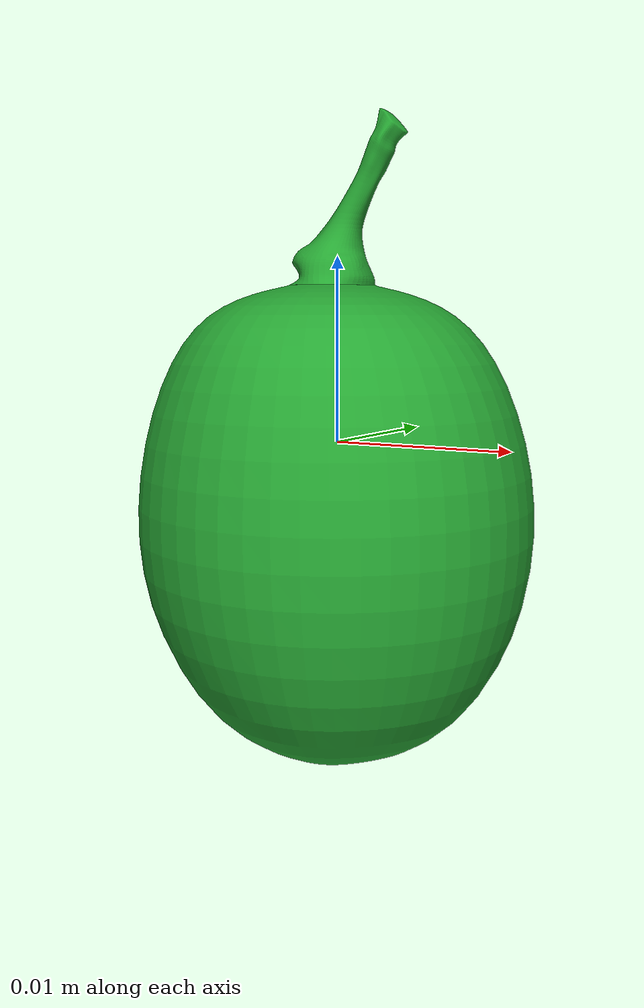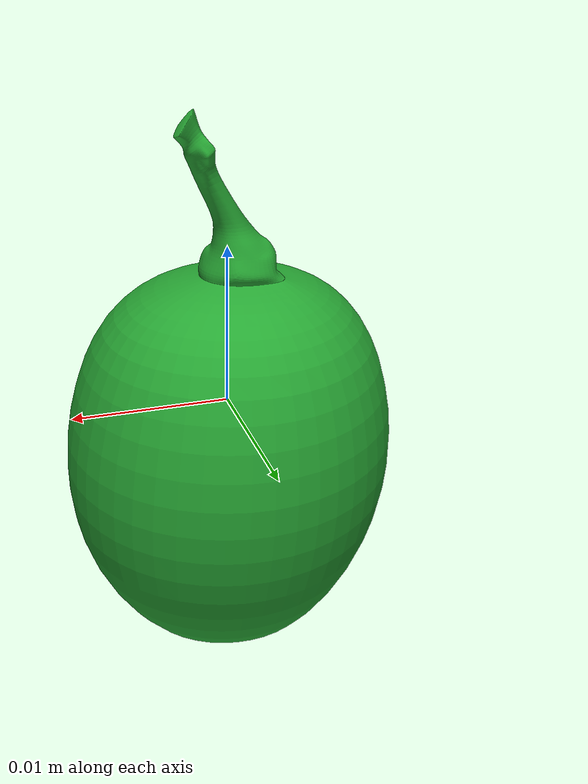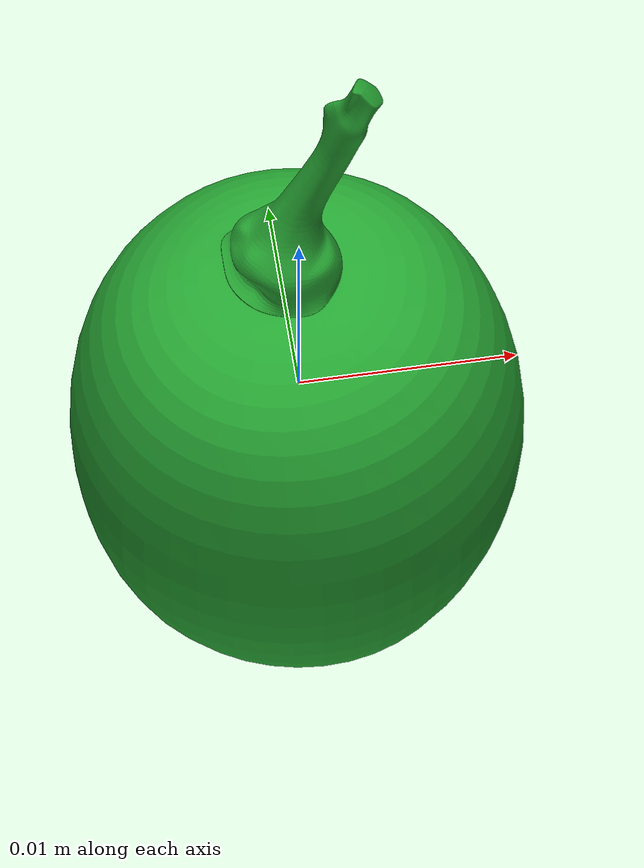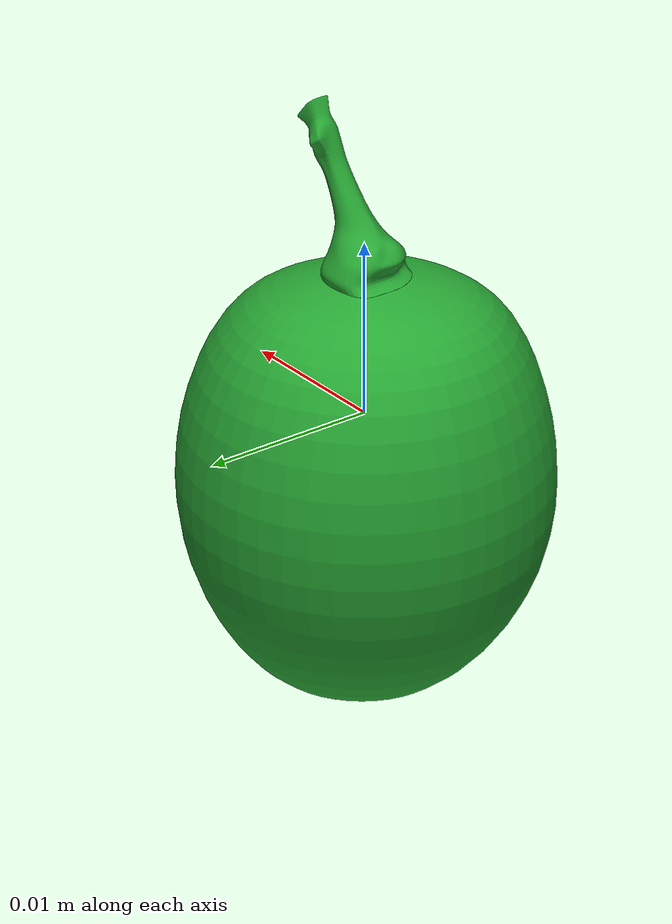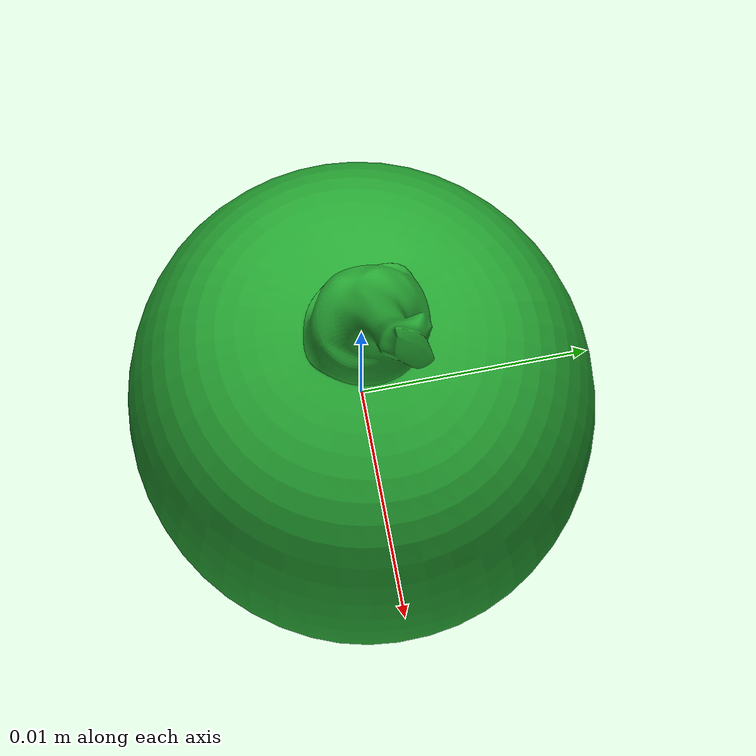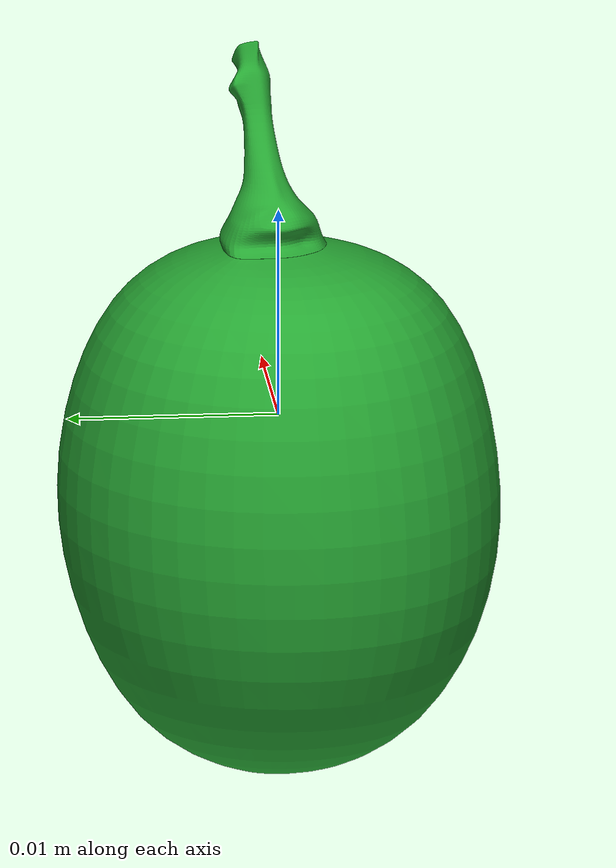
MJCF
<?xml version="1.0" ?>
<mujoco model="green_grape">
	<compiler meshdir="green_grape/meshes" texturedir="green_grape/textures" angle="radian" autolimits="true" balanceinertia="true" boundmass="0.000001" boundinertia="0.000001"/>
	<default>
		<default class="visual">
			<geom contype="0" conaffinity="0"/>
		</default>
		<default class="collision">
			<geom rgba="1.0 0.0 0.0 0.0"/>
		</default>
	</default>
	<asset>
		<mesh name="GreenGrapeFlesh" file="obj/GreenGrapeFlesh.obj" scale="1.0 1.0 1.0"/>
		<mesh name="GreenGrapeFlesh_001" file="stl/GreenGrapeFlesh_001.stl" scale="1.0 1.0 1.0"/>
		<mesh name="GreenGrapeSeed002" file="stl/GreenGrapeSeed002.stl" scale="1.0 1.0 1.0"/>
		<mesh name="GreenGrapeSeed002_002" file="stl/GreenGrapeSeed002_002.stl" scale="1.0 1.0 1.0"/>
		<mesh name="GreenGrapePeel" file="obj/GreenGrapePeel.obj" scale="1.0 1.0 1.0"/>
		<mesh name="GreenGrapePeel_001" file="stl/GreenGrapePeel_001.stl" scale="1.0 1.0 1.0"/>
		<mesh name="GreenGrapePeel_002" file="stl/GreenGrapePeel_002.stl" scale="1.0 1.0 1.0"/>
		<mesh name="GreenGrapePeel_003" file="stl/GreenGrapePeel_003.stl" scale="1.0 1.0 1.0"/>
		<mesh name="GreenGrapePeel_004" file="stl/GreenGrapePeel_004.stl" scale="1.0 1.0 1.0"/>
		<mesh name="GreenGrapePeel_005" file="stl/GreenGrapePeel_005.stl" scale="1.0 1.0 1.0"/>
		<mesh name="GreenGrapePeel_006" file="stl/GreenGrapePeel_006.stl" scale="1.0 1.0 1.0"/>
		<mesh name="GreenGrapePeel_007" file="stl/GreenGrapePeel_007.stl" scale="1.0 1.0 1.0"/>
		<mesh name="GreenGrapePeel_008" file="stl/GreenGrapePeel_008.stl" scale="1.0 1.0 1.0"/>
		<mesh name="GreenGrapePeel_009" file="stl/GreenGrapePeel_009.stl" scale="1.0 1.0 1.0"/>
		<mesh name="GreenGrapePeel_010" file="stl/GreenGrapePeel_010.stl" scale="1.0 1.0 1.0"/>
		<mesh name="GreenGrapePeel_011" file="stl/GreenGrapePeel_011.stl" scale="1.0 1.0 1.0"/>
		<mesh name="GreenGrapePeel_012" file="stl/GreenGrapePeel_012.stl" scale="1.0 1.0 1.0"/>
		<mesh name="GreenGrapePeel_013" file="stl/GreenGrapePeel_013.stl" scale="1.0 1.0 1.0"/>
		<mesh name="GreenGrapePeel_014" file="stl/GreenGrapePeel_014.stl" scale="1.0 1.0 1.0"/>
		<mesh name="GreenGrapePeel_015" file="stl/GreenGrapePeel_015.stl" scale="1.0 1.0 1.0"/>
		<mesh name="GreenGrapePeel_016" file="stl/GreenGrapePeel_016.stl" scale="1.0 1.0 1.0"/>
		<mesh name="GreenGrapePeel_017" file="stl/GreenGrapePeel_017.stl" scale="1.0 1.0 1.0"/>
		<mesh name="GreenGrapePeel_018" file="stl/GreenGrapePeel_018.stl" scale="1.0 1.0 1.0"/>
		<mesh name="GreenGrapePeel_019" file="stl/GreenGrapePeel_019.stl" scale="1.0 1.0 1.0"/>
		<mesh name="GreenGrapePeel_020" file="stl/GreenGrapePeel_020.stl" scale="1.0 1.0 1.0"/>
		<mesh name="GreenGrapePeel_021" file="stl/GreenGrapePeel_021.stl" scale="1.0 1.0 1.0"/>
		<mesh name="GreenGrapePeel_022" file="stl/GreenGrapePeel_022.stl" scale="1.0 1.0 1.0"/>
		<mesh name="GreenGrapePeel_023" file="stl/GreenGrapePeel_023.stl" scale="1.0 1.0 1.0"/>
		<mesh name="GreenGrapePeel_024" file="stl/GreenGrapePeel_024.stl" scale="1.0 1.0 1.0"/>
		<mesh name="GreenGrapePeel_025" file="stl/GreenGrapePeel_025.stl" scale="1.0 1.0 1.0"/>
		<mesh name="GreenGrapePeel_026" file="stl/GreenGrapePeel_026.stl" scale="1.0 1.0 1.0"/>
		<mesh name="GreenGrapePeel_027" file="stl/GreenGrapePeel_027.stl" scale="1.0 1.0 1.0"/>
		<mesh name="GreenGrapePeel_028" file="stl/GreenGrapePeel_028.stl" scale="1.0 1.0 1.0"/>
		<mesh name="GreenGrapePeel_029" file="stl/GreenGrapePeel_029.stl" scale="1.0 1.0 1.0"/>
		<mesh name="GreenGrapePeel_030" file="stl/GreenGrapePeel_030.stl" scale="1.0 1.0 1.0"/>
		<mesh name="GreenGrapePeel_031" file="stl/GreenGrapePeel_031.stl" scale="1.0 1.0 1.0"/>
		<mesh name="GreenGrapePeel_032" file="stl/GreenGrapePeel_032.stl" scale="1.0 1.0 1.0"/>
		<mesh name="GreenGrapePeel_033" file="stl/GreenGrapePeel_033.stl" scale="1.0 1.0 1.0"/>
		<mesh name="GreenGrapePeel_034" file="stl/GreenGrapePeel_034.stl" scale="1.0 1.0 1.0"/>
		<mesh name="GreenGrapePeel_035" file="stl/GreenGrapePeel_035.stl" scale="1.0 1.0 1.0"/>
		<mesh name="GreenGrapePeel_036" file="stl/GreenGrapePeel_036.stl" scale="1.0 1.0 1.0"/>
		<mesh name="GreenGrapePeel_037" file="stl/GreenGrapePeel_037.stl" scale="1.0 1.0 1.0"/>
		<mesh name="GreenGrapePeel_038" file="stl/GreenGrapePeel_038.stl" scale="1.0 1.0 1.0"/>
		<mesh name="GreenGrapePeel_039" file="stl/GreenGrapePeel_039.stl" scale="1.0 1.0 1.0"/>
		<mesh name="GreenGrapePeel_040" file="stl/GreenGrapePeel_040.stl" scale="1.0 1.0 1.0"/>
		<mesh name="GreenGrapePeel_041" file="stl/GreenGrapePeel_041.stl" scale="1.0 1.0 1.0"/>
		<mesh name="GreenGrapePeel_042" file="stl/GreenGrapePeel_042.stl" scale="1.0 1.0 1.0"/>
		<mesh name="GreenGrapePeel_043" file="stl/GreenGrapePeel_043.stl" scale="1.0 1.0 1.0"/>
		<mesh name="GreenGrapePeel_044" file="stl/GreenGrapePeel_044.stl" scale="1.0 1.0 1.0"/>
		<mesh name="GreenGrapePeel_045" file="stl/GreenGrapePeel_045.stl" scale="1.0 1.0 1.0"/>
		<mesh name="GreenGrapePeel_046" file="stl/GreenGrapePeel_046.stl" scale="1.0 1.0 1.0"/>
		<mesh name="GreenGrapePeel_047" file="stl/GreenGrapePeel_047.stl" scale="1.0 1.0 1.0"/>
		<mesh name="GreenGrapePeel_048" file="stl/GreenGrapePeel_048.stl" scale="1.0 1.0 1.0"/>
		<mesh name="GreenGrapePeel_049" file="stl/GreenGrapePeel_049.stl" scale="1.0 1.0 1.0"/>
		<mesh name="GreenGrapePeel_050" file="stl/GreenGrapePeel_050.stl" scale="1.0 1.0 1.0"/>
		<mesh name="GreenGrapePeel_051" file="stl/GreenGrapePeel_051.stl" scale="1.0 1.0 1.0"/>
		<mesh name="GreenGrapePeel_052" file="stl/GreenGrapePeel_052.stl" scale="1.0 1.0 1.0"/>
		<mesh name="GreenGrapePeel_053" file="stl/GreenGrapePeel_053.stl" scale="1.0 1.0 1.0"/>
		<mesh name="GreenGrapePeel_054" file="stl/GreenGrapePeel_054.stl" scale="1.0 1.0 1.0"/>
		<mesh name="GreenGrapePeel_055" file="stl/GreenGrapePeel_055.stl" scale="1.0 1.0 1.0"/>
		<mesh name="GreenGrapePeel_056" file="stl/GreenGrapePeel_056.stl" scale="1.0 1.0 1.0"/>
		<mesh name="GreenGrapePeel_057" file="stl/GreenGrapePeel_057.stl" scale="1.0 1.0 1.0"/>
		<mesh name="GreenGrapePeel_058" file="stl/GreenGrapePeel_058.stl" scale="1.0 1.0 1.0"/>
		<mesh name="GreenGrapePeel_059" file="stl/GreenGrapePeel_059.stl" scale="1.0 1.0 1.0"/>
		<mesh name="GreenGrapePeel_060" file="stl/GreenGrapePeel_060.stl" scale="1.0 1.0 1.0"/>
		<mesh name="GreenGrapePeel_061" file="stl/GreenGrapePeel_061.stl" scale="1.0 1.0 1.0"/>
		<mesh name="GreenGrapePeel_062" file="stl/GreenGrapePeel_062.stl" scale="1.0 1.0 1.0"/>
		<mesh name="GreenGrapePeel_063" file="stl/GreenGrapePeel_063.stl" scale="1.0 1.0 1.0"/>
		<mesh name="GreenGrapePeel_064" file="stl/GreenGrapePeel_064.stl" scale="1.0 1.0 1.0"/>
		<mesh name="GreenGrapePeel_065" file="stl/GreenGrapePeel_065.stl" scale="1.0 1.0 1.0"/>
		<mesh name="GreenGrapePeel_066" file="stl/GreenGrapePeel_066.stl" scale="1.0 1.0 1.0"/>
		<mesh name="GreenGrapePeel_067" file="stl/GreenGrapePeel_067.stl" scale="1.0 1.0 1.0"/>
		<mesh name="GreenGrapePeel_068" file="stl/GreenGrapePeel_068.stl" scale="1.0 1.0 1.0"/>
		<mesh name="GreenGrapePeel_069" file="stl/GreenGrapePeel_069.stl" scale="1.0 1.0 1.0"/>
		<mesh name="GreenGrapePeel_070" file="stl/GreenGrapePeel_070.stl" scale="1.0 1.0 1.0"/>
		<mesh name="GreenGrapePeel_071" file="stl/GreenGrapePeel_071.stl" scale="1.0 1.0 1.0"/>
		<mesh name="GreenGrapePeel_072" file="stl/GreenGrapePeel_072.stl" scale="1.0 1.0 1.0"/>
		<mesh name="GreenGrapePeel_073" file="stl/GreenGrapePeel_073.stl" scale="1.0 1.0 1.0"/>
		<mesh name="GreenGrapePeel_074" file="stl/GreenGrapePeel_074.stl" scale="1.0 1.0 1.0"/>
		<mesh name="GreenGrapePeel_075" file="stl/GreenGrapePeel_075.stl" scale="1.0 1.0 1.0"/>
		<mesh name="GreenGrapePeel_076" file="stl/GreenGrapePeel_076.stl" scale="1.0 1.0 1.0"/>
		<mesh name="GreenGrapePeel_077" file="stl/GreenGrapePeel_077.stl" scale="1.0 1.0 1.0"/>
		<mesh name="GreenGrapePeel_078" file="stl/GreenGrapePeel_078.stl" scale="1.0 1.0 1.0"/>
		<mesh name="GreenGrapePeel_079" file="stl/GreenGrapePeel_079.stl" scale="1.0 1.0 1.0"/>
		<mesh name="GreenGrapePeel_080" file="stl/GreenGrapePeel_080.stl" scale="1.0 1.0 1.0"/>
		<mesh name="GreenGrapePeel_081" file="stl/GreenGrapePeel_081.stl" scale="1.0 1.0 1.0"/>
		<mesh name="GreenGrapePeel_082" file="stl/GreenGrapePeel_082.stl" scale="1.0 1.0 1.0"/>
		<mesh name="GreenGrapePeel_083" file="stl/GreenGrapePeel_083.stl" scale="1.0 1.0 1.0"/>
		<mesh name="GreenGrapePeel_084" file="stl/GreenGrapePeel_084.stl" scale="1.0 1.0 1.0"/>
		<mesh name="GreenGrapePeel_085" file="stl/GreenGrapePeel_085.stl" scale="1.0 1.0 1.0"/>
		<mesh name="GreenGrapePeel_086" file="stl/GreenGrapePeel_086.stl" scale="1.0 1.0 1.0"/>
		<mesh name="GreenGrapePeel_087" file="stl/GreenGrapePeel_087.stl" scale="1.0 1.0 1.0"/>
		<mesh name="GreenGrapePeel_088" file="stl/GreenGrapePeel_088.stl" scale="1.0 1.0 1.0"/>
		<mesh name="GreenGrapePeel_089" file="stl/GreenGrapePeel_089.stl" scale="1.0 1.0 1.0"/>
		<mesh name="GreenGrapePeel_090" file="stl/GreenGrapePeel_090.stl" scale="1.0 1.0 1.0"/>
		<mesh name="GreenGrapePeel_091" file="stl/GreenGrapePeel_091.stl" scale="1.0 1.0 1.0"/>
		<mesh name="GreenGrapePeel_092" file="stl/GreenGrapePeel_092.stl" scale="1.0 1.0 1.0"/>
		<mesh name="GreenGrapeStalk" file="obj/GreenGrapeStalk.obj" scale="1.0 1.0 1.0"/>
		<mesh name="GreenGrapeStalk_001" file="stl/GreenGrapeStalk_001.stl" scale="1.0 1.0 1.0"/>
		<mesh name="GreenGrapeStalk_002" file="stl/GreenGrapeStalk_002.stl" scale="1.0 1.0 1.0"/>
		<mesh name="GreenGrapeStalk_003" file="stl/GreenGrapeStalk_003.stl" scale="1.0 1.0 1.0"/>
		<mesh name="GreenGrapeStalk_004" file="stl/GreenGrapeStalk_004.stl" scale="1.0 1.0 1.0"/>
		<mesh name="GreenGrapeStalk_005" file="stl/GreenGrapeStalk_005.stl" scale="1.0 1.0 1.0"/>
		<mesh name="GreenGrapeStalk_006" file="stl/GreenGrapeStalk_006.stl" scale="1.0 1.0 1.0"/>
		<mesh name="GreenGrapeStalk_007" file="stl/GreenGrapeStalk_007.stl" scale="1.0 1.0 1.0"/>
		<material name="M_GreenGrapeFlesh" texture="T_GreenGrapeFlesh"/>
		<material name="M_GreenGrapeSeed002" rgba="0.6880000233650208 0.715499997138977 0.545799970626831 1.0" emission="0.0"/>
		<material name="M_GreenGrapePeel" texture="T_GreenGrapePeel"/>
		<material name="M_GreenGrapeStalk" texture="T_GreenGrapeStalk"/>
		<texture name="T_GreenGrapeFlesh" type="2d" file="T_GreenGrapeFlesh.png"/>
		<texture name="T_GreenGrapePeel" type="2d" file="T_GreenGrapePeel.png"/>
		<texture name="T_GreenGrapeStalk" type="2d" file="T_GreenGrapeStalk.png"/>
	</asset>
	<worldbody>
		<body name="green_grape" pos="0.0 0.0 0.0" quat="1.0 0.0 0.0 0.0">
			<body name="green_grape_flesh" pos="0.0 0.0 0.0" quat="1.0 0.0 0.0 0.0">
				<inertial mass="0.006244463846087456" pos="-3.401461799512617e-05 -3.288120205979794e-05 -0.004133031703531742" quat="-0.6291624307632446 0.2989480793476105 0.6534037590026855 0.2963919937610626" diaginertia="2.77418791938544e-07 4.677823710608209e-07 4.750807818254543e-07"/>
				<geom name="GreenGrapeFlesh" type="mesh" pos="0.0 0.0 0.0" quat="1.0 0.0 0.0 0.0" mesh="GreenGrapeFlesh" material="M_GreenGrapeFlesh" class="visual"/>
				<geom name="GreenGrapeFlesh_001" type="mesh" pos="0.0 0.0 0.0" quat="1.0 0.0 0.0 0.0" mesh="GreenGrapeFlesh_001" class="collision"/>
			</body>
			<body name="green_grape_peel" pos="0.0 0.0 0.0" quat="1.0 0.0 0.0 0.0">
				<inertial mass="0.00016574017354287207" pos="-2.9452494345605373e-05 -3.811405258602463e-05 -0.0042781769298017025" quat="-0.628704309463501 0.2959022521972656 0.6562054753303528 0.294222891330719" diaginertia="1.2907409363549505e-08 1.8610123220241803e-08 1.8875356389003173e-08"/>
				<geom name="GreenGrapePeel" type="mesh" pos="0.0 0.0 0.0" quat="1.0 0.0 0.0 0.0" mesh="GreenGrapePeel" material="M_GreenGrapePeel" class="visual"/>
				<geom name="GreenGrapePeel_001" type="mesh" pos="0.0 0.0 0.0" quat="1.0 0.0 0.0 0.0" mesh="GreenGrapePeel_001" class="collision"/>
				<geom name="GreenGrapePeel_002" type="mesh" pos="0.0 0.0 0.0" quat="1.0 0.0 0.0 0.0" mesh="GreenGrapePeel_002" class="collision"/>
				<geom name="GreenGrapePeel_003" type="mesh" pos="0.0 0.0 0.0" quat="1.0 0.0 0.0 0.0" mesh="GreenGrapePeel_003" class="collision"/>
				<geom name="GreenGrapePeel_004" type="mesh" pos="0.0 0.0 0.0" quat="1.0 0.0 0.0 0.0" mesh="GreenGrapePeel_004" class="collision"/>
				<geom name="GreenGrapePeel_005" type="mesh" pos="0.0 0.0 0.0" quat="1.0 0.0 0.0 0.0" mesh="GreenGrapePeel_005" class="collision"/>
				<geom name="GreenGrapePeel_006" type="mesh" pos="0.0 0.0 0.0" quat="1.0 0.0 0.0 0.0" mesh="GreenGrapePeel_006" class="collision"/>
				<geom name="GreenGrapePeel_007" type="mesh" pos="0.0 0.0 0.0" quat="1.0 0.0 0.0 0.0" mesh="GreenGrapePeel_007" class="collision"/>
				<geom name="GreenGrapePeel_008" type="mesh" pos="0.0 0.0 0.0" quat="1.0 0.0 0.0 0.0" mesh="GreenGrapePeel_008" class="collision"/>
				<geom name="GreenGrapePeel_009" type="mesh" pos="0.0 0.0 0.0" quat="1.0 0.0 0.0 0.0" mesh="GreenGrapePeel_009" class="collision"/>
				<geom name="GreenGrapePeel_010" type="mesh" pos="0.0 0.0 0.0" quat="1.0 0.0 0.0 0.0" mesh="GreenGrapePeel_010" class="collision"/>
				<geom name="GreenGrapePeel_011" type="mesh" pos="0.0 0.0 0.0" quat="1.0 0.0 0.0 0.0" mesh="GreenGrapePeel_011" class="collision"/>
				<geom name="GreenGrapePeel_012" type="mesh" pos="0.0 0.0 0.0" quat="1.0 0.0 0.0 0.0" mesh="GreenGrapePeel_012" class="collision"/>
				<geom name="GreenGrapePeel_013" type="mesh" pos="0.0 0.0 0.0" quat="1.0 0.0 0.0 0.0" mesh="GreenGrapePeel_013" class="collision"/>
				<geom name="GreenGrapePeel_014" type="mesh" pos="0.0 0.0 0.0" quat="1.0 0.0 0.0 0.0" mesh="GreenGrapePeel_014" class="collision"/>
				<geom name="GreenGrapePeel_015" type="mesh" pos="0.0 0.0 0.0" quat="1.0 0.0 0.0 0.0" mesh="GreenGrapePeel_015" class="collision"/>
				<geom name="GreenGrapePeel_016" type="mesh" pos="0.0 0.0 0.0" quat="1.0 0.0 0.0 0.0" mesh="GreenGrapePeel_016" class="collision"/>
				<geom name="GreenGrapePeel_017" type="mesh" pos="0.0 0.0 0.0" quat="1.0 0.0 0.0 0.0" mesh="GreenGrapePeel_017" class="collision"/>
				<geom name="GreenGrapePeel_018" type="mesh" pos="0.0 0.0 0.0" quat="1.0 0.0 0.0 0.0" mesh="GreenGrapePeel_018" class="collision"/>
				<geom name="GreenGrapePeel_019" type="mesh" pos="0.0 0.0 0.0" quat="1.0 0.0 0.0 0.0" mesh="GreenGrapePeel_019" class="collision"/>
				<geom name="GreenGrapePeel_020" type="mesh" pos="0.0 0.0 0.0" quat="1.0 0.0 0.0 0.0" mesh="GreenGrapePeel_020" class="collision"/>
				<geom name="GreenGrapePeel_021" type="mesh" pos="0.0 0.0 0.0" quat="1.0 0.0 0.0 0.0" mesh="GreenGrapePeel_021" class="collision"/>
				<geom name="GreenGrapePeel_022" type="mesh" pos="0.0 0.0 0.0" quat="1.0 0.0 0.0 0.0" mesh="GreenGrapePeel_022" class="collision"/>
				<geom name="GreenGrapePeel_023" type="mesh" pos="0.0 0.0 0.0" quat="1.0 0.0 0.0 0.0" mesh="GreenGrapePeel_023" class="collision"/>
				<geom name="GreenGrapePeel_024" type="mesh" pos="0.0 0.0 0.0" quat="1.0 0.0 0.0 0.0" mesh="GreenGrapePeel_024" class="collision"/>
				<geom name="GreenGrapePeel_025" type="mesh" pos="0.0 0.0 0.0" quat="1.0 0.0 0.0 0.0" mesh="GreenGrapePeel_025" class="collision"/>
				<geom name="GreenGrapePeel_026" type="mesh" pos="0.0 0.0 0.0" quat="1.0 0.0 0.0 0.0" mesh="GreenGrapePeel_026" class="collision"/>
				<geom name="GreenGrapePeel_027" type="mesh" pos="0.0 0.0 0.0" quat="1.0 0.0 0.0 0.0" mesh="GreenGrapePeel_027" class="collision"/>
				<geom name="GreenGrapePeel_028" type="mesh" pos="0.0 0.0 0.0" quat="1.0 0.0 0.0 0.0" mesh="GreenGrapePeel_028" class="collision"/>
				<geom name="GreenGrapePeel_029" type="mesh" pos="0.0 0.0 0.0" quat="1.0 0.0 0.0 0.0" mesh="GreenGrapePeel_029" class="collision"/>
				<geom name="GreenGrapePeel_030" type="mesh" pos="0.0 0.0 0.0" quat="1.0 0.0 0.0 0.0" mesh="GreenGrapePeel_030" class="collision"/>
				<geom name="GreenGrapePeel_031" type="mesh" pos="0.0 0.0 0.0" quat="1.0 0.0 0.0 0.0" mesh="GreenGrapePeel_031" class="collision"/>
				<geom name="GreenGrapePeel_032" type="mesh" pos="0.0 0.0 0.0" quat="1.0 0.0 0.0 0.0" mesh="GreenGrapePeel_032" class="collision"/>
				<geom name="GreenGrapePeel_033" type="mesh" pos="0.0 0.0 0.0" quat="1.0 0.0 0.0 0.0" mesh="GreenGrapePeel_033" class="collision"/>
				<geom name="GreenGrapePeel_034" type="mesh" pos="0.0 0.0 0.0" quat="1.0 0.0 0.0 0.0" mesh="GreenGrapePeel_034" class="collision"/>
				<geom name="GreenGrapePeel_035" type="mesh" pos="0.0 0.0 0.0" quat="1.0 0.0 0.0 0.0" mesh="GreenGrapePeel_035" class="collision"/>
				<geom name="GreenGrapePeel_036" type="mesh" pos="0.0 0.0 0.0" quat="1.0 0.0 0.0 0.0" mesh="GreenGrapePeel_036" class="collision"/>
				<geom name="GreenGrapePeel_037" type="mesh" pos="0.0 0.0 0.0" quat="1.0 0.0 0.0 0.0" mesh="GreenGrapePeel_037" class="collision"/>
				<geom name="GreenGrapePeel_038" type="mesh" pos="0.0 0.0 0.0" quat="1.0 0.0 0.0 0.0" mesh="GreenGrapePeel_038" class="collision"/>
				<geom name="GreenGrapePeel_039" type="mesh" pos="0.0 0.0 0.0" quat="1.0 0.0 0.0 0.0" mesh="GreenGrapePeel_039" class="collision"/>
				<geom name="GreenGrapePeel_040" type="mesh" pos="0.0 0.0 0.0" quat="1.0 0.0 0.0 0.0" mesh="GreenGrapePeel_040" class="collision"/>
				<geom name="GreenGrapePeel_041" type="mesh" pos="0.0 0.0 0.0" quat="1.0 0.0 0.0 0.0" mesh="GreenGrapePeel_041" class="collision"/>
				<geom name="GreenGrapePeel_042" type="mesh" pos="0.0 0.0 0.0" quat="1.0 0.0 0.0 0.0" mesh="GreenGrapePeel_042" class="collision"/>
				<geom name="GreenGrapePeel_043" type="mesh" pos="0.0 0.0 0.0" quat="1.0 0.0 0.0 0.0" mesh="GreenGrapePeel_043" class="collision"/>
				<geom name="GreenGrapePeel_044" type="mesh" pos="0.0 0.0 0.0" quat="1.0 0.0 0.0 0.0" mesh="GreenGrapePeel_044" class="collision"/>
				<geom name="GreenGrapePeel_045" type="mesh" pos="0.0 0.0 0.0" quat="1.0 0.0 0.0 0.0" mesh="GreenGrapePeel_045" class="collision"/>
				<geom name="GreenGrapePeel_046" type="mesh" pos="0.0 0.0 0.0" quat="1.0 0.0 0.0 0.0" mesh="GreenGrapePeel_046" class="collision"/>
				<geom name="GreenGrapePeel_047" type="mesh" pos="0.0 0.0 0.0" quat="1.0 0.0 0.0 0.0" mesh="GreenGrapePeel_047" class="collision"/>
				<geom name="GreenGrapePeel_048" type="mesh" pos="0.0 0.0 0.0" quat="1.0 0.0 0.0 0.0" mesh="GreenGrapePeel_048" class="collision"/>
				<geom name="GreenGrapePeel_049" type="mesh" pos="0.0 0.0 0.0" quat="1.0 0.0 0.0 0.0" mesh="GreenGrapePeel_049" class="collision"/>
				<geom name="GreenGrapePeel_050" type="mesh" pos="0.0 0.0 0.0" quat="1.0 0.0 0.0 0.0" mesh="GreenGrapePeel_050" class="collision"/>
				<geom name="GreenGrapePeel_051" type="mesh" pos="0.0 0.0 0.0" quat="1.0 0.0 0.0 0.0" mesh="GreenGrapePeel_051" class="collision"/>
				<geom name="GreenGrapePeel_052" type="mesh" pos="0.0 0.0 0.0" quat="1.0 0.0 0.0 0.0" mesh="GreenGrapePeel_052" class="collision"/>
				<geom name="GreenGrapePeel_053" type="mesh" pos="0.0 0.0 0.0" quat="1.0 0.0 0.0 0.0" mesh="GreenGrapePeel_053" class="collision"/>
				<geom name="GreenGrapePeel_054" type="mesh" pos="0.0 0.0 0.0" quat="1.0 0.0 0.0 0.0" mesh="GreenGrapePeel_054" class="collision"/>
				<geom name="GreenGrapePeel_055" type="mesh" pos="0.0 0.0 0.0" quat="1.0 0.0 0.0 0.0" mesh="GreenGrapePeel_055" class="collision"/>
				<geom name="GreenGrapePeel_056" type="mesh" pos="0.0 0.0 0.0" quat="1.0 0.0 0.0 0.0" mesh="GreenGrapePeel_056" class="collision"/>
				<geom name="GreenGrapePeel_057" type="mesh" pos="0.0 0.0 0.0" quat="1.0 0.0 0.0 0.0" mesh="GreenGrapePeel_057" class="collision"/>
				<geom name="GreenGrapePeel_058" type="mesh" pos="0.0 0.0 0.0" quat="1.0 0.0 0.0 0.0" mesh="GreenGrapePeel_058" class="collision"/>
				<geom name="GreenGrapePeel_059" type="mesh" pos="0.0 0.0 0.0" quat="1.0 0.0 0.0 0.0" mesh="GreenGrapePeel_059" class="collision"/>
				<geom name="GreenGrapePeel_060" type="mesh" pos="0.0 0.0 0.0" quat="1.0 0.0 0.0 0.0" mesh="GreenGrapePeel_060" class="collision"/>
				<geom name="GreenGrapePeel_061" type="mesh" pos="0.0 0.0 0.0" quat="1.0 0.0 0.0 0.0" mesh="GreenGrapePeel_061" class="collision"/>
				<geom name="GreenGrapePeel_062" type="mesh" pos="0.0 0.0 0.0" quat="1.0 0.0 0.0 0.0" mesh="GreenGrapePeel_062" class="collision"/>
				<geom name="GreenGrapePeel_063" type="mesh" pos="0.0 0.0 0.0" quat="1.0 0.0 0.0 0.0" mesh="GreenGrapePeel_063" class="collision"/>
				<geom name="GreenGrapePeel_064" type="mesh" pos="0.0 0.0 0.0" quat="1.0 0.0 0.0 0.0" mesh="GreenGrapePeel_064" class="collision"/>
				<geom name="GreenGrapePeel_065" type="mesh" pos="0.0 0.0 0.0" quat="1.0 0.0 0.0 0.0" mesh="GreenGrapePeel_065" class="collision"/>
				<geom name="GreenGrapePeel_066" type="mesh" pos="0.0 0.0 0.0" quat="1.0 0.0 0.0 0.0" mesh="GreenGrapePeel_066" class="collision"/>
				<geom name="GreenGrapePeel_067" type="mesh" pos="0.0 0.0 0.0" quat="1.0 0.0 0.0 0.0" mesh="GreenGrapePeel_067" class="collision"/>
				<geom name="GreenGrapePeel_068" type="mesh" pos="0.0 0.0 0.0" quat="1.0 0.0 0.0 0.0" mesh="GreenGrapePeel_068" class="collision"/>
				<geom name="GreenGrapePeel_069" type="mesh" pos="0.0 0.0 0.0" quat="1.0 0.0 0.0 0.0" mesh="GreenGrapePeel_069" class="collision"/>
				<geom name="GreenGrapePeel_070" type="mesh" pos="0.0 0.0 0.0" quat="1.0 0.0 0.0 0.0" mesh="GreenGrapePeel_070" class="collision"/>
				<geom name="GreenGrapePeel_071" type="mesh" pos="0.0 0.0 0.0" quat="1.0 0.0 0.0 0.0" mesh="GreenGrapePeel_071" class="collision"/>
				<geom name="GreenGrapePeel_072" type="mesh" pos="0.0 0.0 0.0" quat="1.0 0.0 0.0 0.0" mesh="GreenGrapePeel_072" class="collision"/>
				<geom name="GreenGrapePeel_073" type="mesh" pos="0.0 0.0 0.0" quat="1.0 0.0 0.0 0.0" mesh="GreenGrapePeel_073" class="collision"/>
				<geom name="GreenGrapePeel_074" type="mesh" pos="0.0 0.0 0.0" quat="1.0 0.0 0.0 0.0" mesh="GreenGrapePeel_074" class="collision"/>
				<geom name="GreenGrapePeel_075" type="mesh" pos="0.0 0.0 0.0" quat="1.0 0.0 0.0 0.0" mesh="GreenGrapePeel_075" class="collision"/>
				<geom name="GreenGrapePeel_076" type="mesh" pos="0.0 0.0 0.0" quat="1.0 0.0 0.0 0.0" mesh="GreenGrapePeel_076" class="collision"/>
				<geom name="GreenGrapePeel_077" type="mesh" pos="0.0 0.0 0.0" quat="1.0 0.0 0.0 0.0" mesh="GreenGrapePeel_077" class="collision"/>
				<geom name="GreenGrapePeel_078" type="mesh" pos="0.0 0.0 0.0" quat="1.0 0.0 0.0 0.0" mesh="GreenGrapePeel_078" class="collision"/>
				<geom name="GreenGrapePeel_079" type="mesh" pos="0.0 0.0 0.0" quat="1.0 0.0 0.0 0.0" mesh="GreenGrapePeel_079" class="collision"/>
				<geom name="GreenGrapePeel_080" type="mesh" pos="0.0 0.0 0.0" quat="1.0 0.0 0.0 0.0" mesh="GreenGrapePeel_080" class="collision"/>
				<geom name="GreenGrapePeel_081" type="mesh" pos="0.0 0.0 0.0" quat="1.0 0.0 0.0 0.0" mesh="GreenGrapePeel_081" class="collision"/>
				<geom name="GreenGrapePeel_082" type="mesh" pos="0.0 0.0 0.0" quat="1.0 0.0 0.0 0.0" mesh="GreenGrapePeel_082" class="collision"/>
				<geom name="GreenGrapePeel_083" type="mesh" pos="0.0 0.0 0.0" quat="1.0 0.0 0.0 0.0" mesh="GreenGrapePeel_083" class="collision"/>
				<geom name="GreenGrapePeel_084" type="mesh" pos="0.0 0.0 0.0" quat="1.0 0.0 0.0 0.0" mesh="GreenGrapePeel_084" class="collision"/>
				<geom name="GreenGrapePeel_085" type="mesh" pos="0.0 0.0 0.0" quat="1.0 0.0 0.0 0.0" mesh="GreenGrapePeel_085" class="collision"/>
				<geom name="GreenGrapePeel_086" type="mesh" pos="0.0 0.0 0.0" quat="1.0 0.0 0.0 0.0" mesh="GreenGrapePeel_086" class="collision"/>
				<geom name="GreenGrapePeel_087" type="mesh" pos="0.0 0.0 0.0" quat="1.0 0.0 0.0 0.0" mesh="GreenGrapePeel_087" class="collision"/>
				<geom name="GreenGrapePeel_088" type="mesh" pos="0.0 0.0 0.0" quat="1.0 0.0 0.0 0.0" mesh="GreenGrapePeel_088" class="collision"/>
				<geom name="GreenGrapePeel_089" type="mesh" pos="0.0 0.0 0.0" quat="1.0 0.0 0.0 0.0" mesh="GreenGrapePeel_089" class="collision"/>
				<geom name="GreenGrapePeel_090" type="mesh" pos="0.0 0.0 0.0" quat="1.0 0.0 0.0 0.0" mesh="GreenGrapePeel_090" class="collision"/>
				<geom name="GreenGrapePeel_091" type="mesh" pos="0.0 0.0 0.0" quat="1.0 0.0 0.0 0.0" mesh="GreenGrapePeel_091" class="collision"/>
				<geom name="GreenGrapePeel_092" type="mesh" pos="0.0 0.0 0.0" quat="1.0 0.0 0.0 0.0" mesh="GreenGrapePeel_092" class="collision"/>
			</body>
			<body name="green_grape_seed002" pos="0.0 0.0 0.0" quat="1.0 0.0 0.0 0.0">
				<inertial mass="8.96484652912477e-06" pos="0.0031396325211972 -5.241620965534821e-05 -0.0044299219734966755" quat="-0.3424147963523865 0.3115919232368469 0.6639232039451599 0.58725506067276" diaginertia="5.300314874501222e-12 2.734791004765924e-10 2.7555074888496733e-10"/>
				<geom name="GreenGrapeSeed002" type="mesh" pos="0.0 0.0 0.0" quat="1.0 0.0 0.0 0.0" mesh="GreenGrapeSeed002" material="M_GreenGrapeSeed002" class="visual"/>
				<geom name="GreenGrapeSeed002_002" type="mesh" pos="0.0 0.0 0.0" quat="1.0 0.0 0.0 0.0" mesh="GreenGrapeSeed002_002" class="collision"/>
			</body>
			<body name="green_grape_stalk" pos="0.0 0.0 0.0" quat="1.0 0.0 0.0 0.0">
				<inertial mass="4.593765697791241e-05" pos="-9.0691217337735e-05 0.0005510400515049696 0.010631775483489037" quat="0.525123119354248 0.4696272015571594 0.5025424957275391 -0.5011457204818726" diaginertia="1.1328190469006572e-10 5.47817347040791e-09 5.506998412840858e-09"/>
				<geom name="GreenGrapeStalk" type="mesh" pos="0.0 0.0 0.0" quat="1.0 0.0 0.0 0.0" mesh="GreenGrapeStalk" material="M_GreenGrapeStalk" class="visual"/>
				<geom name="GreenGrapeStalk_001" type="mesh" pos="0.0 0.0 0.0" quat="1.0 0.0 0.0 0.0" mesh="GreenGrapeStalk_001" class="collision"/>
				<geom name="GreenGrapeStalk_002" type="mesh" pos="0.0 0.0 0.0" quat="1.0 0.0 0.0 0.0" mesh="GreenGrapeStalk_002" class="collision"/>
				<geom name="GreenGrapeStalk_003" type="mesh" pos="0.0 0.0 0.0" quat="1.0 0.0 0.0 0.0" mesh="GreenGrapeStalk_003" class="collision"/>
				<geom name="GreenGrapeStalk_004" type="mesh" pos="0.0 0.0 0.0" quat="1.0 0.0 0.0 0.0" mesh="GreenGrapeStalk_004" class="collision"/>
				<geom name="GreenGrapeStalk_005" type="mesh" pos="0.0 0.0 0.0" quat="1.0 0.0 0.0 0.0" mesh="GreenGrapeStalk_005" class="collision"/>
				<geom name="GreenGrapeStalk_006" type="mesh" pos="0.0 0.0 0.0" quat="1.0 0.0 0.0 0.0" mesh="GreenGrapeStalk_006" class="collision"/>
				<geom name="GreenGrapeStalk_007" type="mesh" pos="0.0 0.0 0.0" quat="1.0 0.0 0.0 0.0" mesh="GreenGrapeStalk_007" class="collision"/>
			</body>
		</body>
	</worldbody>
	<equality/>
</mujoco>
